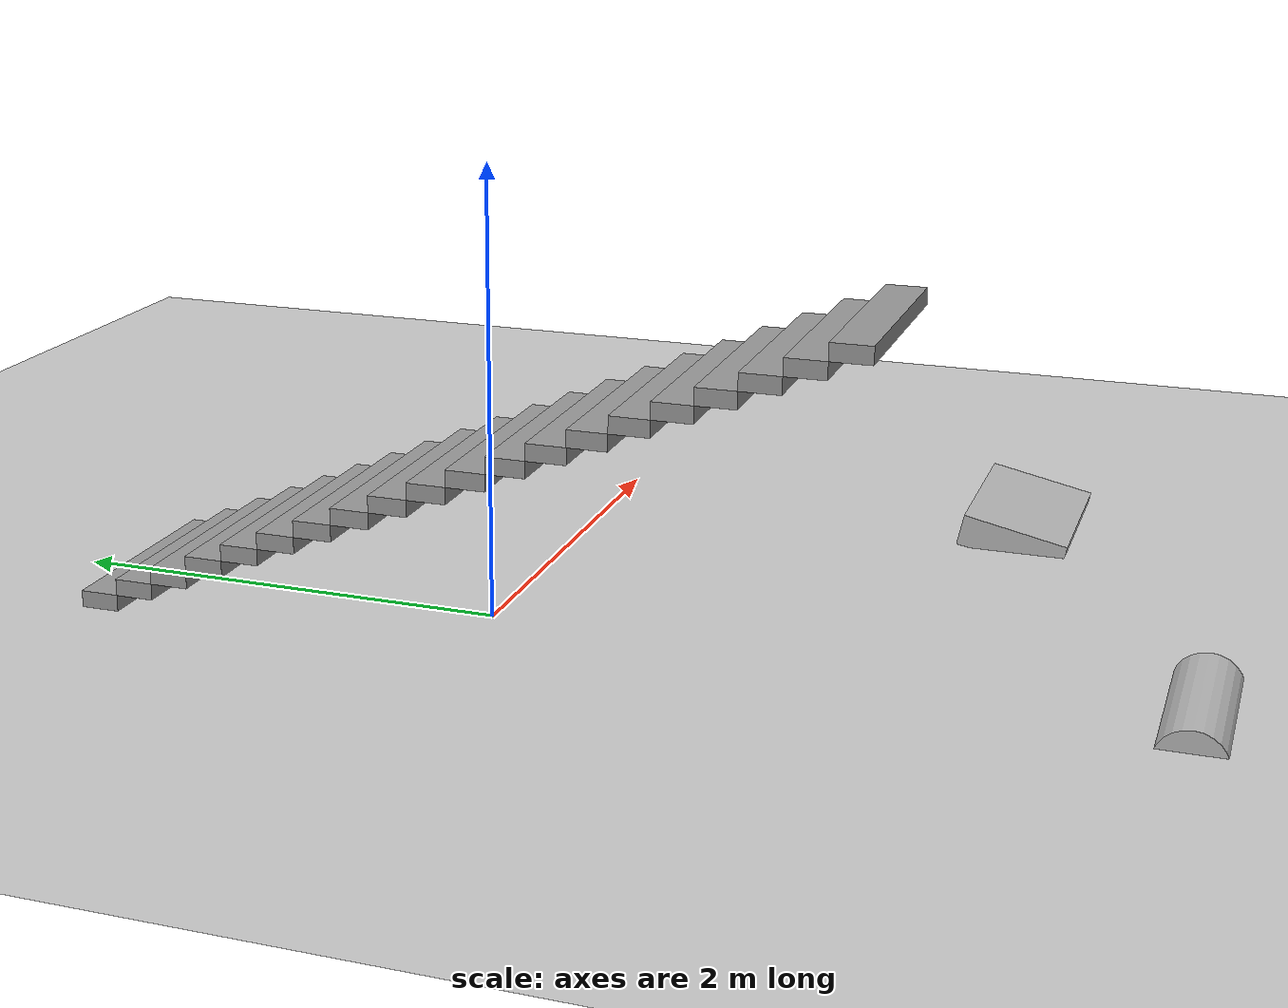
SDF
<?xml version="1.0" ?>
<sdf version="1.6">
    <world name="default">

        <include>
            <uri>model://sun</uri>
        </include>

        <include>
            <uri>model://ground_plane</uri>
        </include>

        <model name='stairs_very_simple'>
            <pose frame=''>0 0 0 0 0 0</pose>
            <link name='Stairs_3'>
                <visual name='Stairs_3_Visual_0'>
                    <pose frame=''>0 1.6625 0.0375 0 -0 0</pose>
                    <geometry>
                        <box>
                            <size>1 0.175 0.075</size>
                        </box>
                    </geometry>
                    <material>
                        <script>
                            <uri>file://media/materials/scripts/gazebo.material</uri>
                            <name>Gazebo/Grey</name>
                        </script>
                        <ambient>1 1 1 1</ambient>
                    </material>
                    <meta>
                        <layer>0</layer>
                    </meta>
                </visual>
                <collision name='Stairs_3_Collision_0'>
                    <geometry>
                        <box>
                            <size>1 0.175 0.075</size>
                        </box>
                    </geometry>
                    <pose frame=''>0 1.6625 0.0375 0 -0 0</pose>
                </collision>
                <visual name='Stairs_3_Visual_1'>
                    <pose frame=''>0 1.4875 0.1125 0 -0 0</pose>
                    <geometry>
                        <box>
                            <size>1 0.175 0.075</size>
                        </box>
                    </geometry>
                    <material>
                        <script>
                            <uri>file://media/materials/scripts/gazebo.material</uri>
                            <name>Gazebo/Grey</name>
                        </script>
                        <ambient>1 1 1 1</ambient>
                    </material>
                    <meta>
                        <layer>0</layer>
                    </meta>
                </visual>
                <collision name='Stairs_3_Collision_1'>
                    <geometry>
                        <box>
                            <size>1 0.175 0.075</size>
                        </box>
                    </geometry>
                    <pose frame=''>0 1.4875 0.1125 0 -0 0</pose>
                </collision>
                <visual name='Stairs_3_Visual_2'>
                    <pose frame=''>0 1.3125 0.1875 0 -0 0</pose>
                    <geometry>
                        <box>
                            <size>1 0.175 0.075</size>
                        </box>
                    </geometry>
                    <material>
                        <script>
                            <uri>file://media/materials/scripts/gazebo.material</uri>
                            <name>Gazebo/Grey</name>
                        </script>
                        <ambient>1 1 1 1</ambient>
                    </material>
                    <meta>
                        <layer>0</layer>
                    </meta>
                </visual>
                <collision name='Stairs_3_Collision_2'>
                    <geometry>
                        <box>
                            <size>1 0.175 0.075</size>
                        </box>
                    </geometry>
                    <pose frame=''>0 1.3125 0.1875 0 -0 0</pose>
                </collision>
                <visual name='Stairs_3_Visual_3'>
                    <pose frame=''>0 1.1375 0.2625 0 -0 0</pose>
                    <geometry>
                        <box>
                            <size>1 0.175 0.075</size>
                        </box>
                    </geometry>
                    <material>
                        <script>
                            <uri>file://media/materials/scripts/gazebo.material</uri>
                            <name>Gazebo/Grey</name>
                        </script>
                        <ambient>1 1 1 1</ambient>
                    </material>
                    <meta>
                        <layer>0</layer>
                    </meta>
                </visual>
                <collision name='Stairs_3_Collision_3'>
                    <geometry>
                        <box>
                            <size>1 0.175 0.075</size>
                        </box>
                    </geometry>
                    <pose frame=''>0 1.1375 0.2625 0 -0 0</pose>
                </collision>
                <visual name='Stairs_3_Visual_4'>
                    <pose frame=''>0 0.9625 0.3375 0 -0 0</pose>
                    <geometry>
                        <box>
                            <size>1 0.175 0.075</size>
                        </box>
                    </geometry>
                    <material>
                        <script>
                            <uri>file://media/materials/scripts/gazebo.material</uri>
                            <name>Gazebo/Grey</name>
                        </script>
                        <ambient>1 1 1 1</ambient>
                    </material>
                    <meta>
                        <layer>0</layer>
                    </meta>
                </visual>
                <collision name='Stairs_3_Collision_4'>
                    <geometry>
                        <box>
                            <size>1 0.175 0.075</size>
                        </box>
                    </geometry>
                    <pose frame=''>0 0.9625 0.3375 0 -0 0</pose>
                </collision>
                <visual name='Stairs_3_Visual_5'>
                    <pose frame=''>0 0.7875 0.4125 0 -0 0</pose>
                    <geometry>
                        <box>
                            <size>1 0.175 0.075</size>
                        </box>
                    </geometry>
                    <material>
                        <script>
                            <uri>file://media/materials/scripts/gazebo.material</uri>
                            <name>Gazebo/Grey</name>
                        </script>
                        <ambient>1 1 1 1</ambient>
                    </material>
                    <meta>
                        <layer>0</layer>
                    </meta>
                </visual>
                <collision name='Stairs_3_Collision_5'>
                    <geometry>
                        <box>
                            <size>1 0.175 0.075</size>
                        </box>
                    </geometry>
                    <pose frame=''>0 0.7875 0.4125 0 -0 0</pose>
                </collision>
                <visual name='Stairs_3_Visual_6'>
                    <pose frame=''>0 0.6125 0.4875 0 -0 0</pose>
                    <geometry>
                        <box>
                            <size>1 0.175 0.075</size>
                        </box>
                    </geometry>
                    <material>
                        <script>
                            <uri>file://media/materials/scripts/gazebo.material</uri>
                            <name>Gazebo/Grey</name>
                        </script>
                        <ambient>1 1 1 1</ambient>
                    </material>
                    <meta>
                        <layer>0</layer>
                    </meta>
                </visual>
                <collision name='Stairs_3_Collision_6'>
                    <geometry>
                        <box>
                            <size>1 0.175 0.075</size>
                        </box>
                    </geometry>
                    <pose frame=''>0 0.6125 0.4875 0 -0 0</pose>
                </collision>
                <visual name='Stairs_3_Visual_7'>
                    <pose frame=''>0 0.4375 0.5625 0 -0 0</pose>
                    <geometry>
                        <box>
                            <size>1 0.175 0.075</size>
                        </box>
                    </geometry>
                    <material>
                        <script>
                            <uri>file://media/materials/scripts/gazebo.material</uri>
                            <name>Gazebo/Grey</name>
                        </script>
                        <ambient>1 1 1 1</ambient>
                    </material>
                    <meta>
                        <layer>0</layer>
                    </meta>
                </visual>
                <collision name='Stairs_3_Collision_7'>
                    <geometry>
                        <box>
                            <size>1 0.175 0.075</size>
                        </box>
                    </geometry>
                    <pose frame=''>0 0.4375 0.5625 0 -0 0</pose>
                </collision>
                <visual name='Stairs_3_Visual_8'>
                    <pose frame=''>0 0.2625 0.6375 0 -0 0</pose>
                    <geometry>
                        <box>
                            <size>1 0.175 0.075</size>
                        </box>
                    </geometry>
                    <material>
                        <script>
                            <uri>file://media/materials/scripts/gazebo.material</uri>
                            <name>Gazebo/Grey</name>
                        </script>
                        <ambient>1 1 1 1</ambient>
                    </material>
                    <meta>
                        <layer>0</layer>
                    </meta>
                </visual>
                <collision name='Stairs_3_Collision_8'>
                    <geometry>
                        <box>
                            <size>1 0.175 0.075</size>
                        </box>
                    </geometry>
                    <pose frame=''>0 0.2625 0.6375 0 -0 0</pose>
                </collision>
                <visual name='Stairs_3_Visual_9'>
                    <pose frame=''>0 0.0875 0.7125 0 -0 0</pose>
                    <geometry>
                        <box>
                            <size>1 0.175 0.075</size>
                        </box>
                    </geometry>
                    <material>
                        <script>
                            <uri>file://media/materials/scripts/gazebo.material</uri>
                            <name>Gazebo/Grey</name>
                        </script>
                        <ambient>1 1 1 1</ambient>
                    </material>
                    <meta>
                        <layer>0</layer>
                    </meta>
                </visual>
                <collision name='Stairs_3_Collision_9'>
                    <geometry>
                        <box>
                            <size>1 0.175 0.075</size>
                        </box>
                    </geometry>
                    <pose frame=''>0 0.0875 0.7125 0 -0 0</pose>
                </collision>
                <visual name='Stairs_3_Visual_10'>
                    <pose frame=''>0 -0.0875 0.7875 0 -0 0</pose>
                    <geometry>
                        <box>
                            <size>1 0.175 0.075</size>
                        </box>
                    </geometry>
                    <material>
                        <script>
                            <uri>file://media/materials/scripts/gazebo.material</uri>
                            <name>Gazebo/Grey</name>
                        </script>
                        <ambient>1 1 1 1</ambient>
                    </material>
                    <meta>
                        <layer>0</layer>
                    </meta>
                </visual>
                <collision name='Stairs_3_Collision_10'>
                    <geometry>
                        <box>
                            <size>1 0.175 0.075</size>
                        </box>
                    </geometry>
                    <pose frame=''>0 -0.0875 0.7875 0 -0 0</pose>
                </collision>
                <visual name='Stairs_3_Visual_11'>
                    <pose frame=''>0 -0.2625 0.8625 0 -0 0</pose>
                    <geometry>
                        <box>
                            <size>1 0.175 0.075</size>
                        </box>
                    </geometry>
                    <material>
                        <script>
                            <uri>file://media/materials/scripts/gazebo.material</uri>
                            <name>Gazebo/Grey</name>
                        </script>
                        <ambient>1 1 1 1</ambient>
                    </material>
                    <meta>
                        <layer>0</layer>
                    </meta>
                </visual>
                <collision name='Stairs_3_Collision_11'>
                    <geometry>
                        <box>
                            <size>1 0.175 0.075</size>
                        </box>
                    </geometry>
                    <pose frame=''>0 -0.2625 0.8625 0 -0 0</pose>
                </collision>
                <visual name='Stairs_3_Visual_12'>
                    <pose frame=''>0 -0.4375 0.9375 0 -0 0</pose>
                    <geometry>
                        <box>
                            <size>1 0.175 0.075</size>
                        </box>
                    </geometry>
                    <material>
                        <script>
                            <uri>file://media/materials/scripts/gazebo.material</uri>
                            <name>Gazebo/Grey</name>
                        </script>
                        <ambient>1 1 1 1</ambient>
                    </material>
                    <meta>
                        <layer>0</layer>
                    </meta>
                </visual>
                <collision name='Stairs_3_Collision_12'>
                    <geometry>
                        <box>
                            <size>1 0.175 0.075</size>
                        </box>
                    </geometry>
                    <pose frame=''>0 -0.4375 0.9375 0 -0 0</pose>
                </collision>
                <visual name='Stairs_3_Visual_13'>
                    <pose frame=''>0 -0.6125 1.0125 0 -0 0</pose>
                    <geometry>
                        <box>
                            <size>1 0.175 0.075</size>
                        </box>
                    </geometry>
                    <material>
                        <script>
                            <uri>file://media/materials/scripts/gazebo.material</uri>
                            <name>Gazebo/Grey</name>
                        </script>
                        <ambient>1 1 1 1</ambient>
                    </material>
                    <meta>
                        <layer>0</layer>
                    </meta>
                </visual>
                <collision name='Stairs_3_Collision_13'>
                    <geometry>
                        <box>
                            <size>1 0.175 0.075</size>
                        </box>
                    </geometry>
                    <pose frame=''>0 -0.6125 1.0125 0 -0 0</pose>
                </collision>
                <visual name='Stairs_3_Visual_14'>
                    <pose frame=''>0 -0.7875 1.0875 0 -0 0</pose>
                    <geometry>
                        <box>
                            <size>1 0.175 0.075</size>
                        </box>
                    </geometry>
                    <material>
                        <script>
                            <uri>file://media/materials/scripts/gazebo.material</uri>
                            <name>Gazebo/Grey</name>
                        </script>
                        <ambient>1 1 1 1</ambient>
                    </material>
                    <meta>
                        <layer>0</layer>
                    </meta>
                </visual>
                <collision name='Stairs_3_Collision_14'>
                    <geometry>
                        <box>
                            <size>1 0.175 0.075</size>
                        </box>
                    </geometry>
                    <pose frame=''>0 -0.7875 1.0875 0 -0 0</pose>
                </collision>
                <visual name='Stairs_3_Visual_15'>
                    <pose frame=''>0 -0.9625 1.1625 0 -0 0</pose>
                    <geometry>
                        <box>
                            <size>1 0.175 0.075</size>
                        </box>
                    </geometry>
                    <material>
                        <script>
                            <uri>file://media/materials/scripts/gazebo.material</uri>
                            <name>Gazebo/Grey</name>
                        </script>
                        <ambient>1 1 1 1</ambient>
                    </material>
                    <meta>
                        <layer>0</layer>
                    </meta>
                </visual>
                <collision name='Stairs_3_Collision_15'>
                    <geometry>
                        <box>
                            <size>1 0.175 0.075</size>
                        </box>
                    </geometry>
                    <pose frame=''>0 -0.9625 1.1625 0 -0 0</pose>
                </collision>
                <visual name='Stairs_3_Visual_16'>
                    <pose frame=''>0 -1.1375 1.2375 0 -0 0</pose>
                    <geometry>
                        <box>
                            <size>1 0.175 0.075</size>
                        </box>
                    </geometry>
                    <material>
                        <script>
                            <uri>file://media/materials/scripts/gazebo.material</uri>
                            <name>Gazebo/Grey</name>
                        </script>
                        <ambient>1 1 1 1</ambient>
                    </material>
                    <meta>
                        <layer>0</layer>
                    </meta>
                </visual>
                <collision name='Stairs_3_Collision_16'>
                    <geometry>
                        <box>
                            <size>1 0.175 0.075</size>
                        </box>
                    </geometry>
                    <pose frame=''>0 -1.1375 1.2375 0 -0 0</pose>
                </collision>
                <visual name='Stairs_3_Visual_17'>
                    <pose frame=''>0 -1.3125 1.3125 0 -0 0</pose>
                    <geometry>
                        <box>
                            <size>1 0.175 0.075</size>
                        </box>
                    </geometry>
                    <material>
                        <script>
                            <uri>file://media/materials/scripts/gazebo.material</uri>
                            <name>Gazebo/Grey</name>
                        </script>
                        <ambient>1 1 1 1</ambient>
                    </material>
                    <meta>
                        <layer>0</layer>
                    </meta>
                </visual>
                <collision name='Stairs_3_Collision_17'>
                    <geometry>
                        <box>
                            <size>1 0.175 0.075</size>
                        </box>
                    </geometry>
                    <pose frame=''>0 -1.3125 1.3125 0 -0 0</pose>
                </collision>
                <visual name='Stairs_3_Visual_18'>
                    <pose frame=''>0 -1.4875 1.3875 0 -0 0</pose>
                    <geometry>
                        <box>
                            <size>1 0.175 0.075</size>
                        </box>
                    </geometry>
                    <material>
                        <script>
                            <uri>file://media/materials/scripts/gazebo.material</uri>
                            <name>Gazebo/Grey</name>
                        </script>
                        <ambient>1 1 1 1</ambient>
                    </material>
                    <meta>
                        <layer>0</layer>
                    </meta>
                </visual>
                <collision name='Stairs_3_Collision_18'>
                    <geometry>
                        <box>
                            <size>1 0.175 0.075</size>
                        </box>
                    </geometry>
                    <pose frame=''>0 -1.4875 1.3875 0 -0 0</pose>
                </collision>
                <visual name='Stairs_3_Visual_19'>
                    <pose frame=''>0 -1.6625 1.4625 0 -0 0</pose>
                    <geometry>
                        <box>
                            <size>1 0.175 0.075</size>
                        </box>
                    </geometry>
                    <material>
                        <script>
                            <uri>file://media/materials/scripts/gazebo.material</uri>
                            <name>Gazebo/Grey</name>
                        </script>
                        <ambient>1 1 1 1</ambient>
                    </material>
                    <meta>
                        <layer>0</layer>
                    </meta>
                </visual>
                <collision name='Stairs_3_Collision_19'>
                    <geometry>
                        <box>
                            <size>1 0.175 0.075</size>
                        </box>
                    </geometry>
                    <pose frame=''>0 -1.6625 1.4625 0 -0 0</pose>
                </collision>
            </link>
            <static>1</static>
        </model>

        <model name="cylinder_obstacle">
            <static>true</static>
            <pose>0 -3 -0.06 0 0 0</pose>
            <link name="cylinder">
                <collision name="cylinder_collision">
                    <pose frame="">0 0 0 0 1.570796327 0</pose>
                    <geometry>
                        <cylinder>
                            <radius>0.15</radius>
                            <length>0.8</length>
                        </cylinder>
                    </geometry>
                    <surface>
                        <friction>
                            <ode>
                                <mu>1</mu>
                            </ode>
                        </friction>
                    </surface>
                </collision>
                <visual name="cylinder_visual">
                    <pose frame="">0 0 0 0 1.570796327 0</pose>
                    <geometry>
                        <cylinder>
                            <radius>0.15</radius>
                            <length>0.8</length>
                        </cylinder>
                    </geometry>
                </visual>
            </link>
        </model>

        <model name="box_obstacle">
            <static>true</static>
            <pose>2 -2 0.028 1.7821 0 0</pose>
            <link name="box">
                <collision name="box_collision">
                    <pose frame="">0 0 0 0 0 0</pose>
                    <geometry>
                        <box>
                            <size>0.85 0.15 0.50</size>
                        </box>
                    </geometry>
                    <surface>
                        <friction>
                            <ode>
                                <mu>1</mu>
                            </ode>
                        </friction>
                    </surface>
                </collision>
                <visual name="box_visual">
                    <pose frame="">0 0 0 0 0 0</pose>
                    <geometry>
                        <box>
                            <size>0.85 0.15 0.50</size>
                        </box>
                    </geometry>
                </visual>
            </link>
        </model>

        <gui fullscreen='0'>
            <camera name='user_camera'>
                <pose>2.8804 5.13112 1.63599 0 0.244 -2.42119</pose>
                <view_controller>orbit</view_controller>
            </camera>
        </gui>
    </world>
</sdf>
